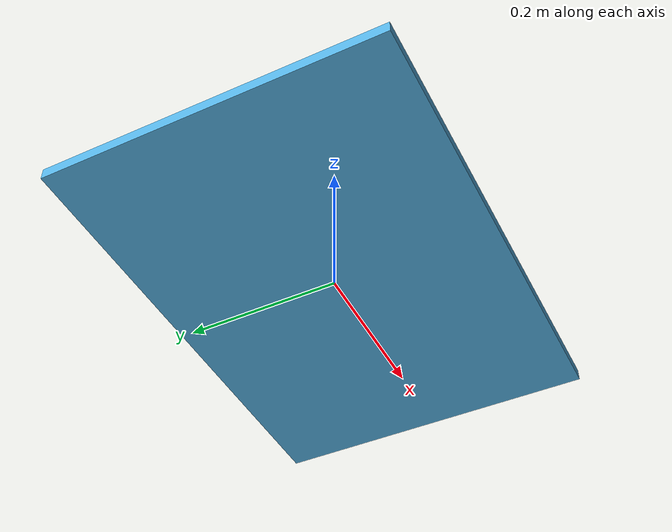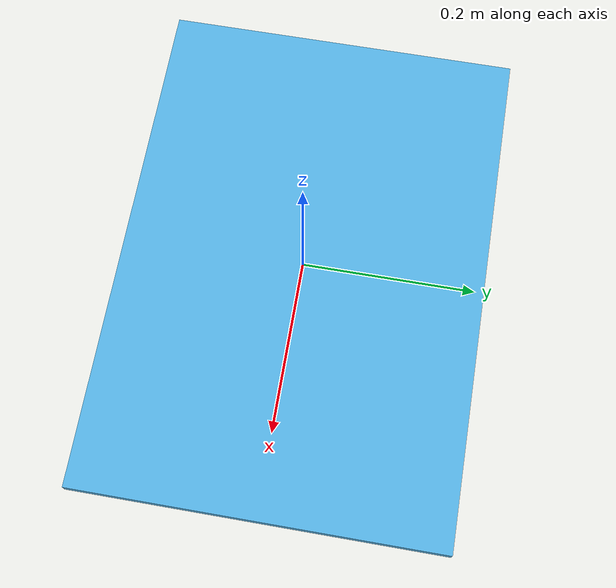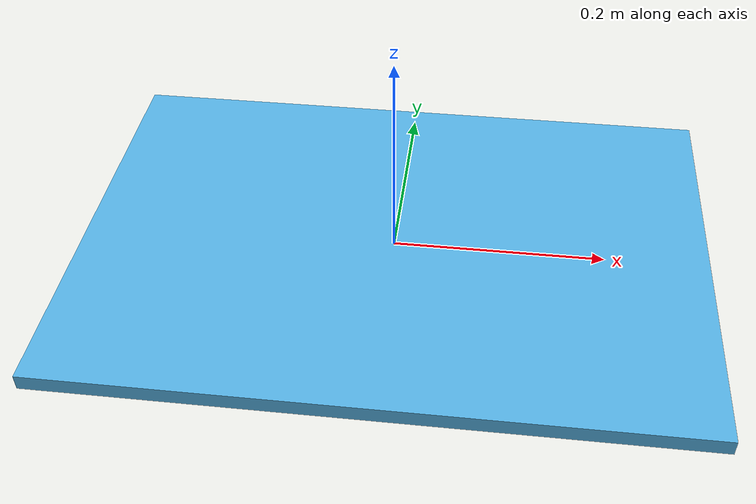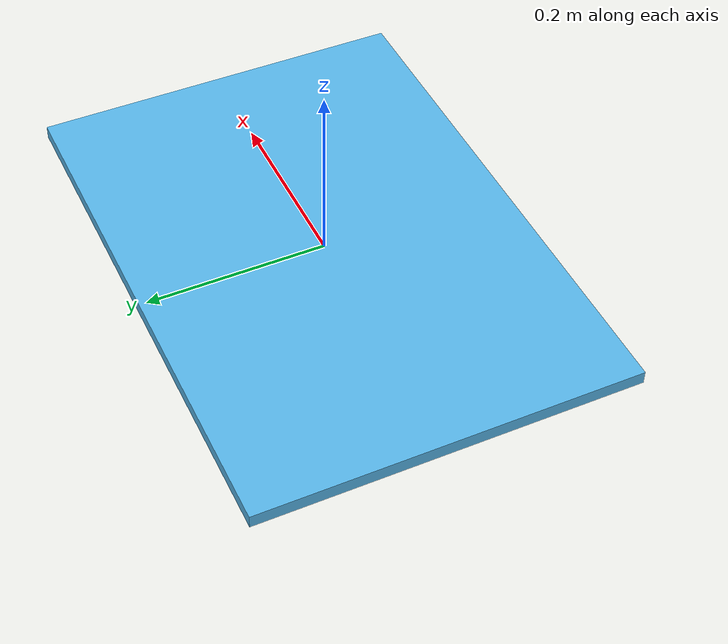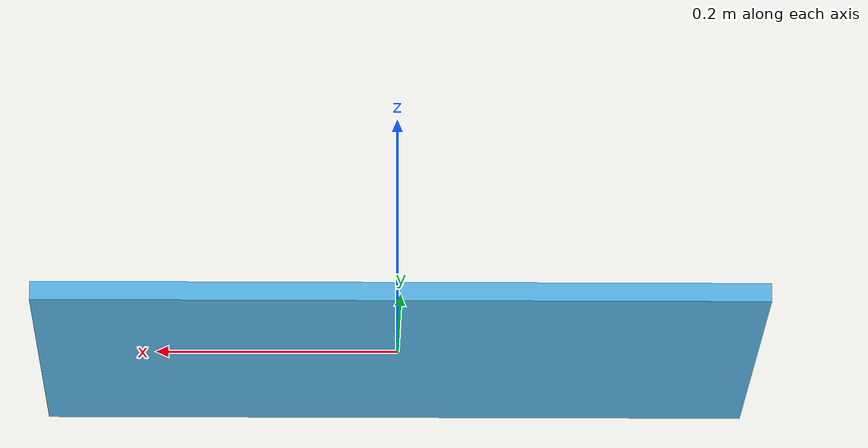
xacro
<?xml version="1.0" ?>
<robot name="Apriltag" xmlns:xacro="http://www.ros.org/wiki/xacro">

<!-- Dummy Root Link -->
  <link name="base_link"/>

    <joint name="base_link_to_chess" type="fixed">
      <parent link="base_link"/>
      <child link="board"/>
    </joint>

<!-- LINKS -->
    <link name="board">
      <inertial>
        <origin xyz="0 0 0"/>
        <mass value="1.0"/>
        <inertia ixx="0.1"  ixy="0"  ixz="1" iyy="0.1" iyz="0" izz="0.1" />
      </inertial>
      <visual>
        <origin xyz="0 0 0" rpy="0 0 0" />
        <geometry>
          <mesh filename="package://warthog_simulation/meshes/apriltag.dae"  scale="1 1 1"/>
        </geometry>
      </visual>
      <collision>
        <origin xyz="0 0 0" rpy="0 0 0" />
        <geometry>
          <mesh filename="package://warthog_simulation/meshes/apriltag.dae"  scale="1 1 1"/>
        </geometry>
      </collision>
    </link>

<!-- KINEMATICS -->
    <gazebo reference="board">
      <self_collide>0</self_collide>
      <kinematic>1</kinematic>
      <gravity>0</gravity>
      <static>true</static>
    </gazebo>

</robot>
